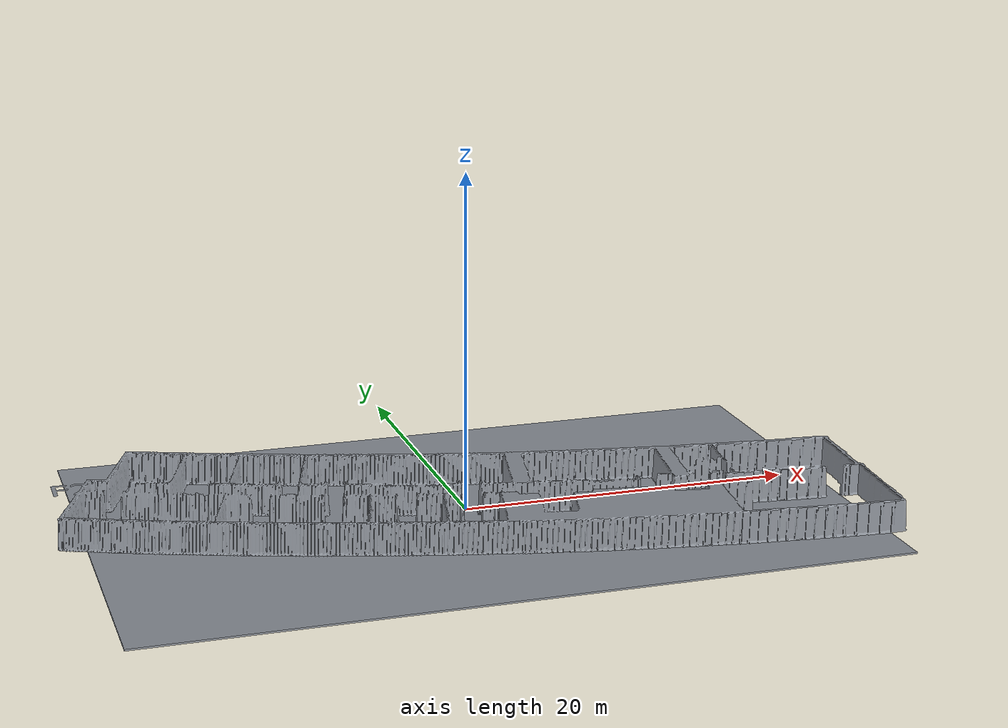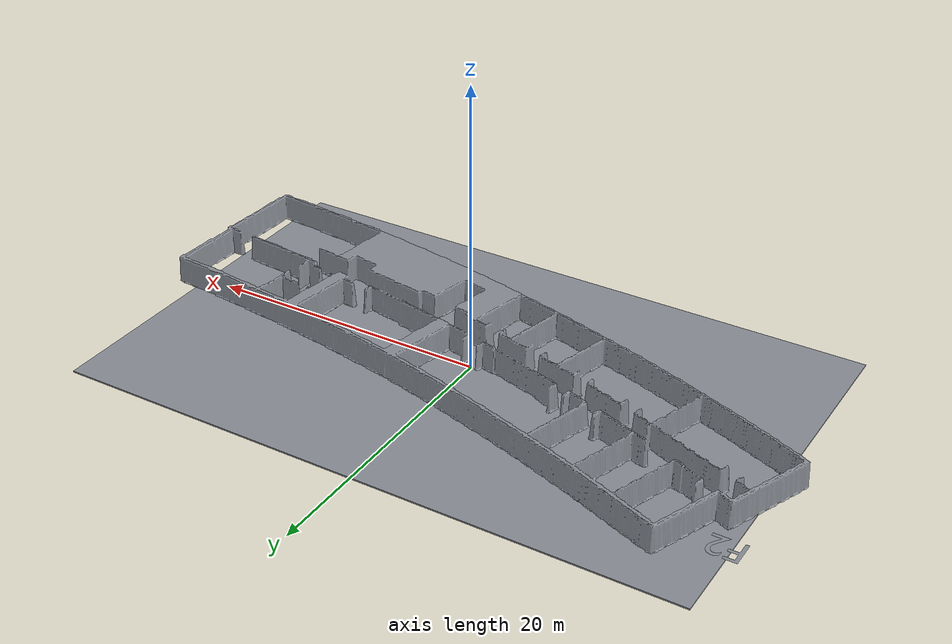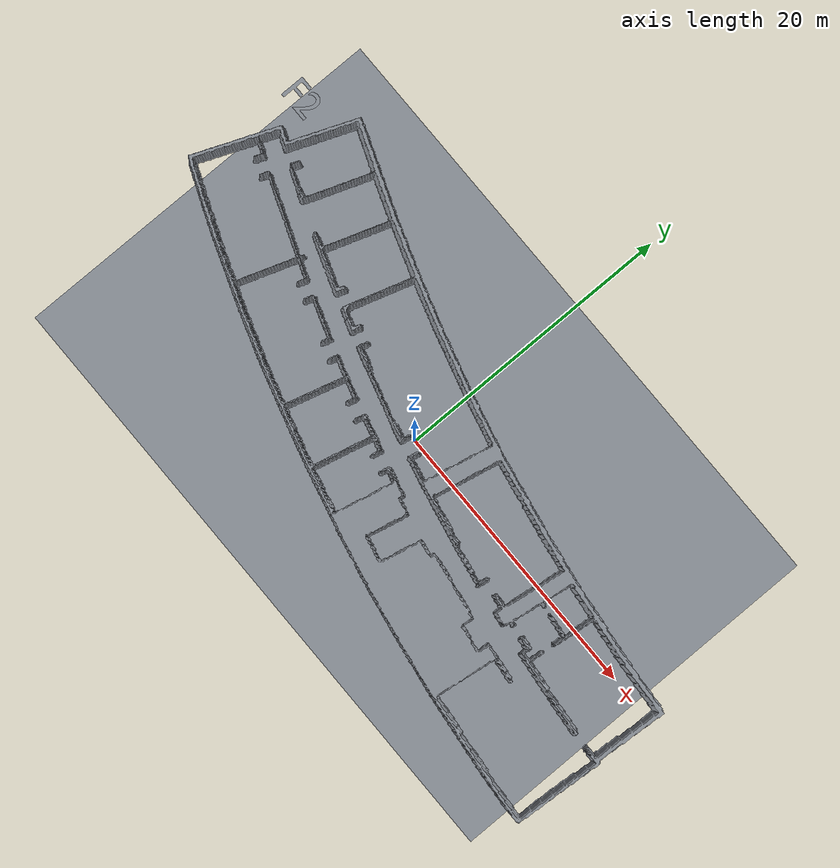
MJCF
<!-- Generated by robot_lab_maps/tools/gen_mjcf_worlds.py from
     maps/celisca_f2_actor/worlds/celisca_f2_actor.world - do not edit by hand. -->
<mujoco model="celisca_f2_actor">
  <option gravity="0 0 -9.81" />
  <compiler angle="radian" />
  <asset>
    <mesh name="celisca_floor_2" file="/workspace/molar/ros_ws/bumperbot_ws/src/robot_lab_maps/maps/celisca_f2_actor/meshes/celisca_floor_2.stl" scale="1.386 1.386 1.386" />
  </asset>
  <worldbody>
    <geom type="plane" size="22 13.75 0.1" contype="0" conaffinity="0" rgba="0.35 0.37 0.4 1" />
    <geom pos="0 0 -0.05" quat="1 0 0 0" rgba="0.55 0.57 0.6 1" type="box" size="22 13.75 0.05" />
    <geom pos="0 0 0" quat="1 0 0 0" rgba="0.55 0.57 0.6 1" type="mesh" mesh="celisca_floor_2" />
    <light diffuse="0.8 0.8 0.8" pos="0 0 10" dir="0 0 -1" castshadow="true" />
    <light diffuse="0.3 0.3 0.3" pos="0 -6 6" dir="0 1 -1" />
  </worldbody>
</mujoco>
